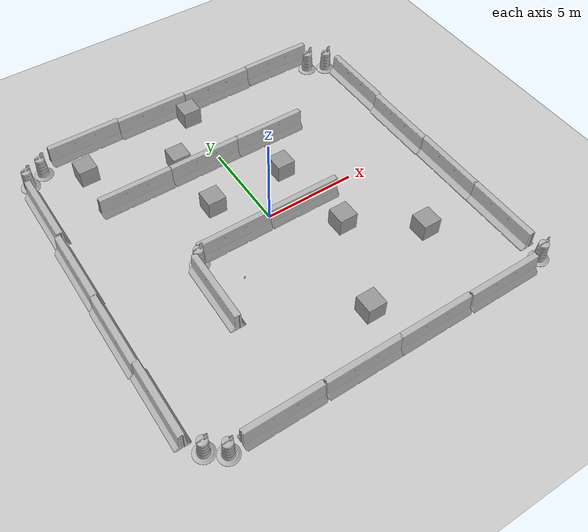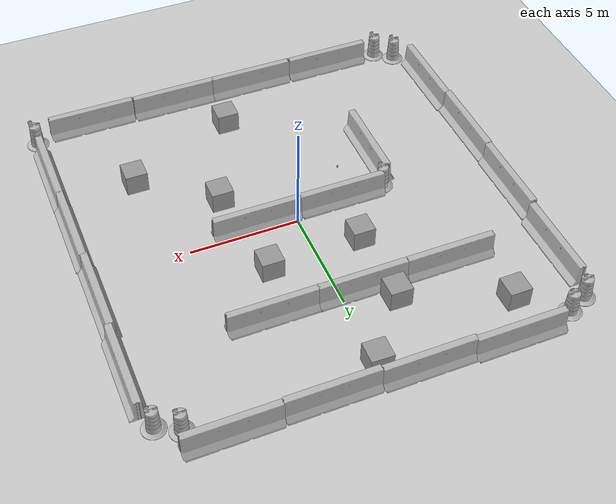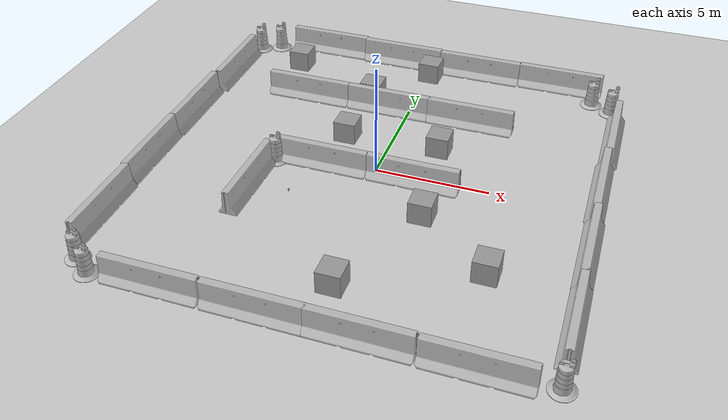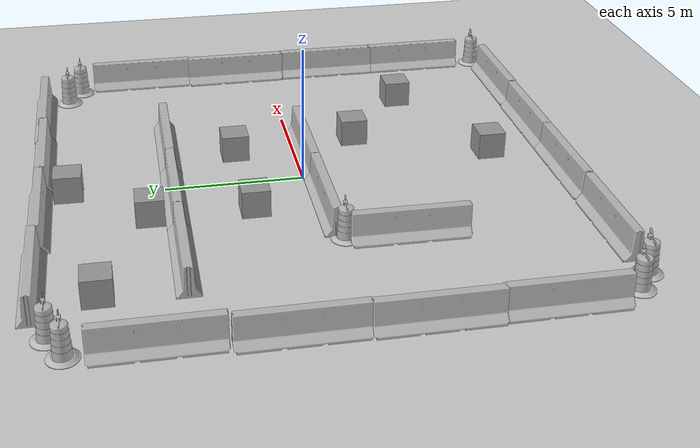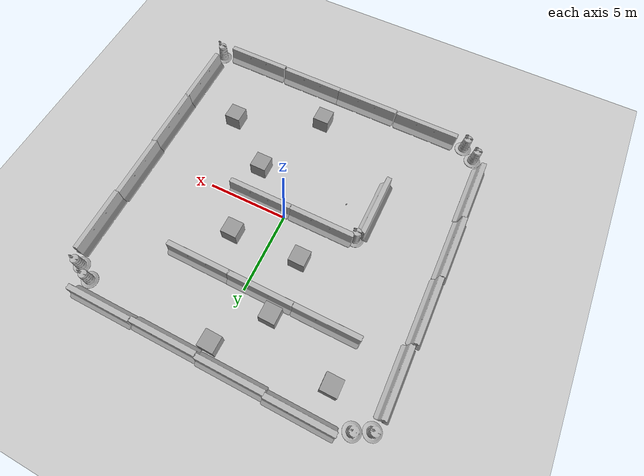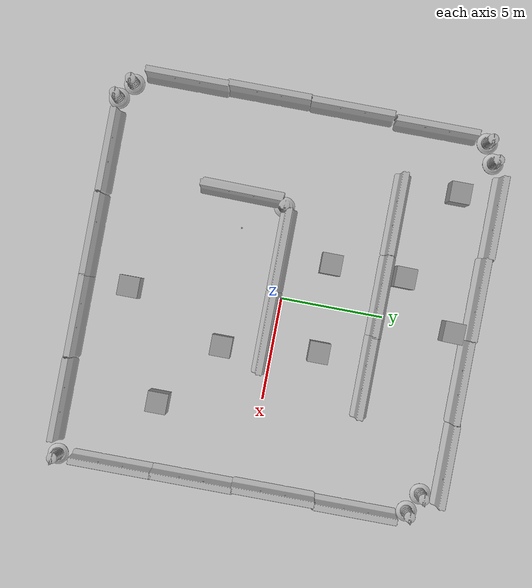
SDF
<sdf version="1.6">
 <world name="default">
  <light name="sun" type="directional">
   <pose>0 0 10 0 -0 0</pose>
   <diffuse>0.8 0.8 0.8 1</diffuse>
   <specular>0.2 0.2 0.2 1</specular>
   <attenuation>
    <range>1000</range>
    <constant>0.9</constant>
    <linear>0.01</linear>
    <quadratic>0.001</quadratic>
   </attenuation>
   <direction>-0.5 0.1 -0.9</direction>
  </light>
  <model name="ground_plane">
   <static>1</static>
   <link name="link">
    <collision name="collision">
     <geometry><plane><normal>0 0 1</normal><size>100 100</size></plane></geometry>
     <surface><friction><ode><mu>100</mu><mu2>50</mu2></ode></friction></surface>
    </collision>
    <visual name="visual">
     <cast_shadows>0</cast_shadows>
     <geometry><plane><normal>0 0 1</normal><size>100 100</size></plane></geometry>
     <material>
      <script><uri>file://media/materials/scripts/gazebo.material</uri><name>Gazebo/Grey</name></script>
     </material>
    </visual>
   </link>
  </model>
  <gravity>0 0 -9.8</gravity>
  <magnetic_field>6e-06 2.3e-05 -4.2e-05</magnetic_field>
  <atmosphere type="adiabatic"/>
  <physics name="default_physics" default="0" type="ode">
   <max_step_size>0.001</max_step_size>
   <real_time_factor>1</real_time_factor>
   <real_time_update_rate>1000</real_time_update_rate>
  </physics>
  <scene><ambient>0.4 0.4 0.4 1</ambient><background>0.7 0.7 0.7 1</background><shadows>1</shadows></scene>
  <spherical_coordinates>
   <surface_model>EARTH_WGS84</surface_model>
   <latitude_deg>0</latitude_deg>
   <longitude_deg>0</longitude_deg>
   <elevation>0</elevation>
   <heading_deg>0</heading_deg>
  </spherical_coordinates>
  <model name="jersey_barrier">
   <static>1</static>
   <link name="link">
    <visual name="visual">
     <geometry>
      <mesh><uri>model://jersey_barrier/meshes/jersey_barrier.dae</uri><scale>1 1 1</scale></mesh>
     </geometry>
    </visual>
    <collision name="upright">
     <pose>0 0 0.5715 0 -0 0</pose>
     <geometry><box><size>4.06542 0.3063 1.143</size></box></geometry>
    </collision>
    <collision name="base">
     <pose>0 0 0.032258 0 -0 0</pose>
     <geometry><box><size>4.06542 0.8107 0.064516</size></box></geometry>
    </collision>
    <collision name="base2">
     <pose>0 0 0.1 0 -0 0</pose>
     <geometry><box><size>4.06542 0.65 0.1</size></box></geometry>
    </collision>
    <collision name="base3">
     <pose>0 0 0.2 0 -0 0</pose>
     <geometry><box><size>4.06542 0.5 0.1</size></box></geometry>
    </collision>
    <collision name="left-angle">
     <pose>0 -0.224 0.2401 0.9 -0 0</pose>
     <geometry><box><size>4.06542 0.5 0.064516</size></box></geometry>
    </collision>
    <collision name="right-angle">
     <pose>0 0.224 0.2401 -0.9 0 0</pose>
     <geometry><box><size>4.06542 0.5 0.064516</size></box></geometry>
    </collision>
   </link>
   <pose>-5.65677 9.4608 0 0 -0 0</pose>
  </model>
  <model name="jersey_barrier_clone">
   <static>1</static>
   <link name="link">
    <visual name="visual">
     <geometry>
      <mesh><uri>model://jersey_barrier/meshes/jersey_barrier.dae</uri><scale>1 1 1</scale></mesh>
     </geometry>
    </visual>
    <collision name="upright">
     <pose>0 0 0.5715 0 -0 0</pose>
     <geometry><box><size>4.06542 0.3063 1.143</size></box></geometry>
    </collision>
    <collision name="base">
     <pose>0 0 0.032258 0 -0 0</pose>
     <geometry><box><size>4.06542 0.8107 0.064516</size></box></geometry>
    </collision>
    <collision name="base2">
     <pose>0 0 0.1 0 -0 0</pose>
     <geometry><box><size>4.06542 0.65 0.1</size></box></geometry>
    </collision>
    <collision name="base3">
     <pose>0 0 0.2 0 -0 0</pose>
     <geometry><box><size>4.06542 0.5 0.1</size></box></geometry>
    </collision>
    <collision name="left-angle">
     <pose>0 -0.224 0.2401 0.9 -0 0</pose>
     <geometry><box><size>4.06542 0.5 0.064516</size></box></geometry>
    </collision>
    <collision name="right-angle">
     <pose>0 0.224 0.2401 -0.9 0 0</pose>
     <geometry><box><size>4.06542 0.5 0.064516</size></box></geometry>
    </collision>
   </link>
   <pose>-1.65987 9.36075 0 0 -0 0</pose>
  </model>
  <model name="jersey_barrier_clone_0">
   <static>1</static>
   <link name="link">
    <visual name="visual">
     <geometry>
      <mesh><uri>model://jersey_barrier/meshes/jersey_barrier.dae</uri><scale>1 1 1</scale></mesh>
     </geometry>
    </visual>
    <collision name="upright">
     <pose>0 0 0.5715 0 -0 0</pose>
     <geometry><box><size>4.06542 0.3063 1.143</size></box></geometry>
    </collision>
    <collision name="base">
     <pose>0 0 0.032258 0 -0 0</pose>
     <geometry><box><size>4.06542 0.8107 0.064516</size></box></geometry>
    </collision>
    <collision name="base2">
     <pose>0 0 0.1 0 -0 0</pose>
     <geometry><box><size>4.06542 0.65 0.1</size></box></geometry>
    </collision>
    <collision name="base3">
     <pose>0 0 0.2 0 -0 0</pose>
     <geometry><box><size>4.06542 0.5 0.1</size></box></geometry>
    </collision>
    <collision name="left-angle">
     <pose>0 -0.224 0.2401 0.9 -0 0</pose>
     <geometry><box><size>4.06542 0.5 0.064516</size></box></geometry>
    </collision>
    <collision name="right-angle">
     <pose>0 0.224 0.2401 -0.9 0 0</pose>
     <geometry><box><size>4.06542 0.5 0.064516</size></box></geometry>
    </collision>
   </link>
   <pose>2.39773 9.29085 0 0 -0 0</pose>
  </model>
  <model name="jersey_barrier_clone_1">
   <static>1</static>
   <link name="link">
    <visual name="visual">
     <geometry>
      <mesh><uri>model://jersey_barrier/meshes/jersey_barrier.dae</uri><scale>1 1 1</scale></mesh>
     </geometry>
    </visual>
    <collision name="upright">
     <pose>0 0 0.5715 0 -0 0</pose>
     <geometry><box><size>4.06542 0.3063 1.143</size></box></geometry>
    </collision>
    <collision name="base">
     <pose>0 0 0.032258 0 -0 0</pose>
     <geometry><box><size>4.06542 0.8107 0.064516</size></box></geometry>
    </collision>
    <collision name="base2">
     <pose>0 0 0.1 0 -0 0</pose>
     <geometry><box><size>4.06542 0.65 0.1</size></box></geometry>
    </collision>
    <collision name="base3">
     <pose>0 0 0.2 0 -0 0</pose>
     <geometry><box><size>4.06542 0.5 0.1</size></box></geometry>
    </collision>
    <collision name="left-angle">
     <pose>0 -0.224 0.2401 0.9 -0 0</pose>
     <geometry><box><size>4.06542 0.5 0.064516</size></box></geometry>
    </collision>
    <collision name="right-angle">
     <pose>0 0.224 0.2401 -0.9 0 0</pose>
     <geometry><box><size>4.06542 0.5 0.064516</size></box></geometry>
    </collision>
   </link>
   <pose>6.45464 9.33993 0 0 -0 0</pose>
  </model>
  <model name="jersey_barrier_clone_3">
   <static>1</static>
   <link name="link">
    <visual name="visual">
     <geometry>
      <mesh><uri>model://jersey_barrier/meshes/jersey_barrier.dae</uri><scale>1 1 1</scale></mesh>
     </geometry>
    </visual>
    <collision name="upright">
     <pose>0 0 0.5715 0 -0 0</pose>
     <geometry><box><size>4.06542 0.3063 1.143</size></box></geometry>
    </collision>
    <collision name="base">
     <pose>0 0 0.032258 0 -0 0</pose>
     <geometry><box><size>4.06542 0.8107 0.064516</size></box></geometry>
    </collision>
    <collision name="base2">
     <pose>0 0 0.1 0 -0 0</pose>
     <geometry><box><size>4.06542 0.65 0.1</size></box></geometry>
    </collision>
    <collision name="base3">
     <pose>0 0 0.2 0 -0 0</pose>
     <geometry><box><size>4.06542 0.5 0.1</size></box></geometry>
    </collision>
    <collision name="left-angle">
     <pose>0 -0.224 0.2401 0.9 -0 0</pose>
     <geometry><box><size>4.06542 0.5 0.064516</size></box></geometry>
    </collision>
    <collision name="right-angle">
     <pose>0 0.224 0.2401 -0.9 0 0</pose>
     <geometry><box><size>4.06542 0.5 0.064516</size></box></geometry>
    </collision>
   </link>
   <pose>9.44656 5.35522 0 0 0 -1.56865</pose>
  </model>
  <model name="jersey_barrier_clone_3_clone">
   <static>1</static>
   <link name="link">
    <visual name="visual">
     <geometry>
      <mesh><uri>model://jersey_barrier/meshes/jersey_barrier.dae</uri><scale>1 1 1</scale></mesh>
     </geometry>
    </visual>
    <collision name="upright">
     <pose>0 0 0.5715 0 -0 0</pose>
     <geometry><box><size>4.06542 0.3063 1.143</size></box></geometry>
    </collision>
    <collision name="base">
     <pose>0 0 0.032258 0 -0 0</pose>
     <geometry><box><size>4.06542 0.8107 0.064516</size></box></geometry>
    </collision>
    <collision name="base2">
     <pose>0 0 0.1 0 -0 0</pose>
     <geometry><box><size>4.06542 0.65 0.1</size></box></geometry>
    </collision>
    <collision name="base3">
     <pose>0 0 0.2 0 -0 0</pose>
     <geometry><box><size>4.06542 0.5 0.1</size></box></geometry>
    </collision>
    <collision name="left-angle">
     <pose>0 -0.224 0.2401 0.9 -0 0</pose>
     <geometry><box><size>4.06542 0.5 0.064516</size></box></geometry>
    </collision>
    <collision name="right-angle">
     <pose>0 0.224 0.2401 -0.9 0 0</pose>
     <geometry><box><size>4.06542 0.5 0.064516</size></box></geometry>
    </collision>
   </link>
   <pose>9.3727 1.33119 0 0 0 -1.56865</pose>
  </model>
  <model name="jersey_barrier_clone_3_clone_0">
   <static>1</static>
   <link name="link">
    <visual name="visual">
     <geometry>
      <mesh><uri>model://jersey_barrier/meshes/jersey_barrier.dae</uri><scale>1 1 1</scale></mesh>
     </geometry>
    </visual>
    <collision name="upright">
     <pose>0 0 0.5715 0 -0 0</pose>
     <geometry><box><size>4.06542 0.3063 1.143</size></box></geometry>
    </collision>
    <collision name="base">
     <pose>0 0 0.032258 0 -0 0</pose>
     <geometry><box><size>4.06542 0.8107 0.064516</size></box></geometry>
    </collision>
    <collision name="base2">
     <pose>0 0 0.1 0 -0 0</pose>
     <geometry><box><size>4.06542 0.65 0.1</size></box></geometry>
    </collision>
    <collision name="base3">
     <pose>0 0 0.2 0 -0 0</pose>
     <geometry><box><size>4.06542 0.5 0.1</size></box></geometry>
    </collision>
    <collision name="left-angle">
     <pose>0 -0.224 0.2401 0.9 -0 0</pose>
     <geometry><box><size>4.06542 0.5 0.064516</size></box></geometry>
    </collision>
    <collision name="right-angle">
     <pose>0 0.224 0.2401 -0.9 0 0</pose>
     <geometry><box><size>4.06542 0.5 0.064516</size></box></geometry>
    </collision>
   </link>
   <pose>9.4315 -2.6268 0 0 0 -1.56865</pose>
  </model>
  <model name="jersey_barrier_clone_3_clone_1">
   <static>1</static>
   <link name="link">
    <visual name="visual">
     <geometry>
      <mesh><uri>model://jersey_barrier/meshes/jersey_barrier.dae</uri><scale>1 1 1</scale></mesh>
     </geometry>
    </visual>
    <collision name="upright">
     <pose>0 0 0.5715 0 -0 0</pose>
     <geometry><box><size>4.06542 0.3063 1.143</size></box></geometry>
    </collision>
    <collision name="base">
     <pose>0 0 0.032258 0 -0 0</pose>
     <geometry><box><size>4.06542 0.8107 0.064516</size></box></geometry>
    </collision>
    <collision name="base2">
     <pose>0 0 0.1 0 -0 0</pose>
     <geometry><box><size>4.06542 0.65 0.1</size></box></geometry>
    </collision>
    <collision name="base3">
     <pose>0 0 0.2 0 -0 0</pose>
     <geometry><box><size>4.06542 0.5 0.1</size></box></geometry>
    </collision>
    <collision name="left-angle">
     <pose>0 -0.224 0.2401 0.9 -0 0</pose>
     <geometry><box><size>4.06542 0.5 0.064516</size></box></geometry>
    </collision>
    <collision name="right-angle">
     <pose>0 0.224 0.2401 -0.9 0 0</pose>
     <geometry><box><size>4.06542 0.5 0.064516</size></box></geometry>
    </collision>
   </link>
   <pose>9.44969 -6.53485 0 0 0 -1.56865</pose>
  </model>
  <model name="jersey_barrier_clone_2_clone">
   <static>1</static>
   <link name="link">
    <visual name="visual">
     <geometry>
      <mesh><uri>model://jersey_barrier/meshes/jersey_barrier.dae</uri><scale>1 1 1</scale></mesh>
     </geometry>
    </visual>
    <collision name="upright">
     <pose>0 0 0.5715 0 -0 0</pose>
     <geometry><box><size>4.06542 0.3063 1.143</size></box></geometry>
    </collision>
    <collision name="base">
     <pose>0 0 0.032258 0 -0 0</pose>
     <geometry><box><size>4.06542 0.8107 0.064516</size></box></geometry>
    </collision>
    <collision name="base2">
     <pose>0 0 0.1 0 -0 0</pose>
     <geometry><box><size>4.06542 0.65 0.1</size></box></geometry>
    </collision>
    <collision name="base3">
     <pose>0 0 0.2 0 -0 0</pose>
     <geometry><box><size>4.06542 0.5 0.1</size></box></geometry>
    </collision>
    <collision name="left-angle">
     <pose>0 -0.224 0.2401 0.9 -0 0</pose>
     <geometry><box><size>4.06542 0.5 0.064516</size></box></geometry>
    </collision>
    <collision name="right-angle">
     <pose>0 0.224 0.2401 -0.9 0 0</pose>
     <geometry><box><size>4.06542 0.5 0.064516</size></box></geometry>
    </collision>
   </link>
   <pose>6.70657 -9.54347 0 0 -0 0</pose>
  </model>
  <model name="jersey_barrier_clone_2_clone_0">
   <static>1</static>
   <link name="link">
    <visual name="visual">
     <geometry>
      <mesh><uri>model://jersey_barrier/meshes/jersey_barrier.dae</uri><scale>1 1 1</scale></mesh>
     </geometry>
    </visual>
    <collision name="upright">
     <pose>0 0 0.5715 0 -0 0</pose>
     <geometry><box><size>4.06542 0.3063 1.143</size></box></geometry>
    </collision>
    <collision name="base">
     <pose>0 0 0.032258 0 -0 0</pose>
     <geometry><box><size>4.06542 0.8107 0.064516</size></box></geometry>
    </collision>
    <collision name="base2">
     <pose>0 0 0.1 0 -0 0</pose>
     <geometry><box><size>4.06542 0.65 0.1</size></box></geometry>
    </collision>
    <collision name="base3">
     <pose>0 0 0.2 0 -0 0</pose>
     <geometry><box><size>4.06542 0.5 0.1</size></box></geometry>
    </collision>
    <collision name="left-angle">
     <pose>0 -0.224 0.2401 0.9 -0 0</pose>
     <geometry><box><size>4.06542 0.5 0.064516</size></box></geometry>
    </collision>
    <collision name="right-angle">
     <pose>0 0.224 0.2401 -0.9 0 0</pose>
     <geometry><box><size>4.06542 0.5 0.064516</size></box></geometry>
    </collision>
   </link>
   <pose>2.59616 -9.50928 0 0 -0 0</pose>
  </model>
  <model name="jersey_barrier_clone_2_clone_1">
   <static>1</static>
   <link name="link">
    <visual name="visual">
     <geometry>
      <mesh><uri>model://jersey_barrier/meshes/jersey_barrier.dae</uri><scale>1 1 1</scale></mesh>
     </geometry>
    </visual>
    <collision name="upright">
     <pose>0 0 0.5715 0 -0 0</pose>
     <geometry><box><size>4.06542 0.3063 1.143</size></box></geometry>
    </collision>
    <collision name="base">
     <pose>0 0 0.032258 0 -0 0</pose>
     <geometry><box><size>4.06542 0.8107 0.064516</size></box></geometry>
    </collision>
    <collision name="base2">
     <pose>0 0 0.1 0 -0 0</pose>
     <geometry><box><size>4.06542 0.65 0.1</size></box></geometry>
    </collision>
    <collision name="base3">
     <pose>0 0 0.2 0 -0 0</pose>
     <geometry><box><size>4.06542 0.5 0.1</size></box></geometry>
    </collision>
    <collision name="left-angle">
     <pose>0 -0.224 0.2401 0.9 -0 0</pose>
     <geometry><box><size>4.06542 0.5 0.064516</size></box></geometry>
    </collision>
    <collision name="right-angle">
     <pose>0 0.224 0.2401 -0.9 0 0</pose>
     <geometry><box><size>4.06542 0.5 0.064516</size></box></geometry>
    </collision>
   </link>
   <pose>-1.33414 -9.50852 0 0 -0 0</pose>
  </model>
  <model name="jersey_barrier_clone_2_clone_2">
   <static>1</static>
   <link name="link">
    <visual name="visual">
     <geometry>
      <mesh><uri>model://jersey_barrier/meshes/jersey_barrier.dae</uri><scale>1 1 1</scale></mesh>
     </geometry>
    </visual>
    <collision name="upright">
     <pose>0 0 0.5715 0 -0 0</pose>
     <geometry><box><size>4.06542 0.3063 1.143</size></box></geometry>
    </collision>
    <collision name="base">
     <pose>0 0 0.032258 0 -0 0</pose>
     <geometry><box><size>4.06542 0.8107 0.064516</size></box></geometry>
    </collision>
    <collision name="base2">
     <pose>0 0 0.1 0 -0 0</pose>
     <geometry><box><size>4.06542 0.65 0.1</size></box></geometry>
    </collision>
    <collision name="base3">
     <pose>0 0 0.2 0 -0 0</pose>
     <geometry><box><size>4.06542 0.5 0.1</size></box></geometry>
    </collision>
    <collision name="left-angle">
     <pose>0 -0.224 0.2401 0.9 -0 0</pose>
     <geometry><box><size>4.06542 0.5 0.064516</size></box></geometry>
    </collision>
    <collision name="right-angle">
     <pose>0 0.224 0.2401 -0.9 0 0</pose>
     <geometry><box><size>4.06542 0.5 0.064516</size></box></geometry>
    </collision>
   </link>
   <pose>-5.44605 -9.49634 0 0 -0 0</pose>
  </model>
  <model name="jersey_barrier_clone_3_clone_1_clone">
   <static>1</static>
   <link name="link">
    <visual name="visual">
     <geometry>
      <mesh><uri>model://jersey_barrier/meshes/jersey_barrier.dae</uri><scale>1 1 1</scale></mesh>
     </geometry>
    </visual>
    <collision name="upright">
     <pose>0 0 0.5715 0 -0 0</pose>
     <geometry><box><size>4.06542 0.3063 1.143</size></box></geometry>
    </collision>
    <collision name="base">
     <pose>0 0 0.032258 0 -0 0</pose>
     <geometry><box><size>4.06542 0.8107 0.064516</size></box></geometry>
    </collision>
    <collision name="base2">
     <pose>0 0 0.1 0 -0 0</pose>
     <geometry><box><size>4.06542 0.65 0.1</size></box></geometry>
    </collision>
    <collision name="base3">
     <pose>0 0 0.2 0 -0 0</pose>
     <geometry><box><size>4.06542 0.5 0.1</size></box></geometry>
    </collision>
    <collision name="left-angle">
     <pose>0 -0.224 0.2401 0.9 -0 0</pose>
     <geometry><box><size>4.06542 0.5 0.064516</size></box></geometry>
    </collision>
    <collision name="right-angle">
     <pose>0 0.224 0.2401 -0.9 0 0</pose>
     <geometry><box><size>4.06542 0.5 0.064516</size></box></geometry>
    </collision>
   </link>
   <pose>-9.54289 -6.33149 0 0 0 -1.56865</pose>
  </model>
  <model name="jersey_barrier_clone_3_clone_1_clone_0">
   <static>1</static>
   <link name="link">
    <visual name="visual">
     <geometry>
      <mesh><uri>model://jersey_barrier/meshes/jersey_barrier.dae</uri><scale>1 1 1</scale></mesh>
     </geometry>
    </visual>
    <collision name="upright">
     <pose>0 0 0.5715 0 -0 0</pose>
     <geometry><box><size>4.06542 0.3063 1.143</size></box></geometry>
    </collision>
    <collision name="base">
     <pose>0 0 0.032258 0 -0 0</pose>
     <geometry><box><size>4.06542 0.8107 0.064516</size></box></geometry>
    </collision>
    <collision name="base2">
     <pose>0 0 0.1 0 -0 0</pose>
     <geometry><box><size>4.06542 0.65 0.1</size></box></geometry>
    </collision>
    <collision name="base3">
     <pose>0 0 0.2 0 -0 0</pose>
     <geometry><box><size>4.06542 0.5 0.1</size></box></geometry>
    </collision>
    <collision name="left-angle">
     <pose>0 -0.224 0.2401 0.9 -0 0</pose>
     <geometry><box><size>4.06542 0.5 0.064516</size></box></geometry>
    </collision>
    <collision name="right-angle">
     <pose>0 0.224 0.2401 -0.9 0 0</pose>
     <geometry><box><size>4.06542 0.5 0.064516</size></box></geometry>
    </collision>
   </link>
   <pose>-9.6221 -2.35336 0 0 0 -1.56865</pose>
  </model>
  <model name="jersey_barrier_clone_3_clone_1_clone_1">
   <static>1</static>
   <link name="link">
    <visual name="visual">
     <geometry>
      <mesh><uri>model://jersey_barrier/meshes/jersey_barrier.dae</uri><scale>1 1 1</scale></mesh>
     </geometry>
    </visual>
    <collision name="upright">
     <pose>0 0 0.5715 0 -0 0</pose>
     <geometry><box><size>4.06542 0.3063 1.143</size></box></geometry>
    </collision>
    <collision name="base">
     <pose>0 0 0.032258 0 -0 0</pose>
     <geometry><box><size>4.06542 0.8107 0.064516</size></box></geometry>
    </collision>
    <collision name="base2">
     <pose>0 0 0.1 0 -0 0</pose>
     <geometry><box><size>4.06542 0.65 0.1</size></box></geometry>
    </collision>
    <collision name="base3">
     <pose>0 0 0.2 0 -0 0</pose>
     <geometry><box><size>4.06542 0.5 0.1</size></box></geometry>
    </collision>
    <collision name="left-angle">
     <pose>0 -0.224 0.2401 0.9 -0 0</pose>
     <geometry><box><size>4.06542 0.5 0.064516</size></box></geometry>
    </collision>
    <collision name="right-angle">
     <pose>0 0.224 0.2401 -0.9 0 0</pose>
     <geometry><box><size>4.06542 0.5 0.064516</size></box></geometry>
    </collision>
   </link>
   <pose>-9.58952 1.69745 0 0 0 -1.56865</pose>
  </model>
  <model name="jersey_barrier_clone_3_clone_1_clone_2">
   <static>1</static>
   <link name="link">
    <visual name="visual">
     <geometry>
      <mesh><uri>model://jersey_barrier/meshes/jersey_barrier.dae</uri><scale>1 1 1</scale></mesh>
     </geometry>
    </visual>
    <collision name="upright">
     <pose>0 0 0.5715 0 -0 0</pose>
     <geometry><box><size>4.06542 0.3063 1.143</size></box></geometry>
    </collision>
    <collision name="base">
     <pose>0 0 0.032258 0 -0 0</pose>
     <geometry><box><size>4.06542 0.8107 0.064516</size></box></geometry>
    </collision>
    <collision name="base2">
     <pose>0 0 0.1 0 -0 0</pose>
     <geometry><box><size>4.06542 0.65 0.1</size></box></geometry>
    </collision>
    <collision name="base3">
     <pose>0 0 0.2 0 -0 0</pose>
     <geometry><box><size>4.06542 0.5 0.1</size></box></geometry>
    </collision>
    <collision name="left-angle">
     <pose>0 -0.224 0.2401 0.9 -0 0</pose>
     <geometry><box><size>4.06542 0.5 0.064516</size></box></geometry>
    </collision>
    <collision name="right-angle">
     <pose>0 0.224 0.2401 -0.9 0 0</pose>
     <geometry><box><size>4.06542 0.5 0.064516</size></box></geometry>
    </collision>
   </link>
   <pose>-9.44715 5.83721 0 0 0 -1.56865</pose>
  </model>
  <model name="Construction Barrel">
   <link name="link">
    <inertial>
     <pose>0 0 0.4 0 -0 0</pose>
     <mass>500</mass>
     <inertia><ixx>51.2096</ixx><iyy>51.2096</iyy><izz>25</izz><ixy>0</ixy><ixz>0</ixz><iyz>0</iyz></inertia>
    </inertial>
    <collision name="collision">
     <geometry>
      <mesh><uri>model://construction_barrel/meshes/construction_barrel.dae</uri><scale>1 1 1</scale></mesh>
     </geometry>
    </collision>
    <visual name="visual">
     <geometry>
      <mesh><uri>model://construction_barrel/meshes/construction_barrel.dae</uri><scale>1 1 1</scale></mesh>
     </geometry>
    </visual>
   </link>
   <pose>9.07444 7.91058 -2e-06 1e-06 8e-06 -5.3e-05</pose>
  </model>
  <model name="Construction Barrel_0">
   <link name="link">
    <inertial>
     <pose>0 0 0.4 0 -0 0</pose>
     <mass>500</mass>
     <inertia><ixx>51.2096</ixx><iyy>51.2096</iyy><izz>25</izz><ixy>0</ixy><ixz>0</ixz><iyz>0</iyz></inertia>
    </inertial>
    <collision name="collision">
     <geometry>
      <mesh><uri>model://construction_barrel/meshes/construction_barrel.dae</uri><scale>1 1 1</scale></mesh>
     </geometry>
    </collision>
    <visual name="visual">
     <geometry>
      <mesh><uri>model://construction_barrel/meshes/construction_barrel.dae</uri><scale>1 1 1</scale></mesh>
     </geometry>
    </visual>
   </link>
   <pose>8.12828 8.41638 -2e-06 1e-06 8e-06 -4.8e-05</pose>
  </model>
  <model name="Construction Barrel_1">
   <link name="link">
    <inertial>
     <pose>0 0 0.4 0 -0 0</pose>
     <mass>500</mass>
     <inertia><ixx>51.2096</ixx><iyy>51.2096</iyy><izz>25</izz><ixy>0</ixy><ixz>0</ixz><iyz>0</iyz></inertia>
    </inertial>
    <collision name="collision">
     <geometry>
      <mesh><uri>model://construction_barrel/meshes/construction_barrel.dae</uri><scale>1 1 1</scale></mesh>
     </geometry>
    </collision>
    <visual name="visual">
     <geometry>
      <mesh><uri>model://construction_barrel/meshes/construction_barrel.dae</uri><scale>1 1 1</scale></mesh>
     </geometry>
    </visual>
   </link>
   <pose>-9.27263 8.48393 -2e-06 1e-06 8e-06 -4.7e-05</pose>
  </model>
  <model name="Construction Barrel_2">
   <link name="link">
    <inertial>
     <pose>0 0 0.4 0 -0 0</pose>
     <mass>500</mass>
     <inertia><ixx>51.2096</ixx><iyy>51.2096</iyy><izz>25</izz><ixy>0</ixy><ixz>0</ixz><iyz>0</iyz></inertia>
    </inertial>
    <collision name="collision">
     <geometry>
      <mesh><uri>model://construction_barrel/meshes/construction_barrel.dae</uri><scale>1 1 1</scale></mesh>
     </geometry>
    </collision>
    <visual name="visual">
     <geometry>
      <mesh><uri>model://construction_barrel/meshes/construction_barrel.dae</uri><scale>1 1 1</scale></mesh>
     </geometry>
    </visual>
   </link>
   <pose>-8.34361 8.93855 1e-06 3e-06 2e-06 -4e-05</pose>
  </model>
  <model name="Construction Barrel_3">
   <link name="link">
    <inertial>
     <pose>0 0 0.4 0 -0 0</pose>
     <mass>500</mass>
     <inertia><ixx>51.2096</ixx><iyy>51.2096</iyy><izz>25</izz><ixy>0</ixy><ixz>0</ixz><iyz>0</iyz></inertia>
    </inertial>
    <collision name="collision">
     <geometry>
      <mesh><uri>model://construction_barrel/meshes/construction_barrel.dae</uri><scale>1 1 1</scale></mesh>
     </geometry>
    </collision>
    <visual name="visual">
     <geometry>
      <mesh><uri>model://construction_barrel/meshes/construction_barrel.dae</uri><scale>1 1 1</scale></mesh>
     </geometry>
    </visual>
   </link>
   <pose>9.45362 -9.2943 0 0 0 -4.7e-05</pose>
  </model>
  <model name="Construction Barrel_4">
   <link name="link">
    <inertial>
     <pose>0 0 0.4 0 -0 0</pose>
     <mass>500</mass>
     <inertia><ixx>51.2096</ixx><iyy>51.2096</iyy><izz>25</izz><ixy>0</ixy><ixz>0</ixz><iyz>0</iyz></inertia>
    </inertial>
    <collision name="collision">
     <geometry>
      <mesh><uri>model://construction_barrel/meshes/construction_barrel.dae</uri><scale>1 1 1</scale></mesh>
     </geometry>
    </collision>
    <visual name="visual">
     <geometry>
      <mesh><uri>model://construction_barrel/meshes/construction_barrel.dae</uri><scale>1 1 1</scale></mesh>
     </geometry>
    </visual>
   </link>
   <pose>-8.13316 -9.57173 0 0 0 -0.000464</pose>
  </model>
  <model name="Construction Barrel_5">
   <link name="link">
    <inertial>
     <pose>0 0 0.4 0 -0 0</pose>
     <mass>500</mass>
     <inertia><ixx>51.2096</ixx><iyy>51.2096</iyy><izz>25</izz><ixy>0</ixy><ixz>0</ixz><iyz>0</iyz></inertia>
    </inertial>
    <collision name="collision">
     <geometry>
      <mesh><uri>model://construction_barrel/meshes/construction_barrel.dae</uri><scale>1 1 1</scale></mesh>
     </geometry>
    </collision>
    <visual name="visual">
     <geometry>
      <mesh><uri>model://construction_barrel/meshes/construction_barrel.dae</uri><scale>1 1 1</scale></mesh>
     </geometry>
    </visual>
   </link>
   <pose>-8.93848 -8.96006 0 0 0 -0.000363</pose>
  </model>
  <model name="jersey_barrier_0">
   <static>1</static>
   <link name="link">
    <visual name="visual">
     <geometry>
      <mesh><uri>model://jersey_barrier/meshes/jersey_barrier.dae</uri><scale>1 1 1</scale></mesh>
     </geometry>
    </visual>
    <collision name="upright">
     <pose>0 0 0.5715 0 -0 0</pose>
     <geometry><box><size>4.06542 0.3063 1.143</size></box></geometry>
    </collision>
    <collision name="base">
     <pose>0 0 0.032258 0 -0 0</pose>
     <geometry><box><size>4.06542 0.8107 0.064516</size></box></geometry>
    </collision>
    <collision name="base2">
     <pose>0 0 0.1 0 -0 0</pose>
     <geometry><box><size>4.06542 0.65 0.1</size></box></geometry>
    </collision>
    <collision name="base3">
     <pose>0 0 0.2 0 -0 0</pose>
     <geometry><box><size>4.06542 0.5 0.1</size></box></geometry>
    </collision>
    <collision name="left-angle">
     <pose>0 -0.224 0.2401 0.9 -0 0</pose>
     <geometry><box><size>4.06542 0.5 0.064516</size></box></geometry>
    </collision>
    <collision name="right-angle">
     <pose>0 0.224 0.2401 -0.9 0 0</pose>
     <geometry><box><size>4.06542 0.5 0.064516</size></box></geometry>
    </collision>
   </link>
   <pose>-4.97429 4.73074 0 0 -0 0</pose>
  </model>
  <model name="jersey_barrier_0_clone">
   <static>1</static>
   <link name="link">
    <visual name="visual">
     <geometry>
      <mesh><uri>model://jersey_barrier/meshes/jersey_barrier.dae</uri><scale>1 1 1</scale></mesh>
     </geometry>
    </visual>
    <collision name="upright">
     <pose>0 0 0.5715 0 -0 0</pose>
     <geometry><box><size>4.06542 0.3063 1.143</size></box></geometry>
    </collision>
    <collision name="base">
     <pose>0 0 0.032258 0 -0 0</pose>
     <geometry><box><size>4.06542 0.8107 0.064516</size></box></geometry>
    </collision>
    <collision name="base2">
     <pose>0 0 0.1 0 -0 0</pose>
     <geometry><box><size>4.06542 0.65 0.1</size></box></geometry>
    </collision>
    <collision name="base3">
     <pose>0 0 0.2 0 -0 0</pose>
     <geometry><box><size>4.06542 0.5 0.1</size></box></geometry>
    </collision>
    <collision name="left-angle">
     <pose>0 -0.224 0.2401 0.9 -0 0</pose>
     <geometry><box><size>4.06542 0.5 0.064516</size></box></geometry>
    </collision>
    <collision name="right-angle">
     <pose>0 0.224 0.2401 -0.9 0 0</pose>
     <geometry><box><size>4.06542 0.5 0.064516</size></box></geometry>
    </collision>
   </link>
   <pose>-0.93635 4.73131 0 0 -0 0</pose>
  </model>
  <model name="jersey_barrier_0_clone_0">
   <static>1</static>
   <link name="link">
    <visual name="visual">
     <geometry>
      <mesh><uri>model://jersey_barrier/meshes/jersey_barrier.dae</uri><scale>1 1 1</scale></mesh>
     </geometry>
    </visual>
    <collision name="upright">
     <pose>0 0 0.5715 0 -0 0</pose>
     <geometry><box><size>4.06542 0.3063 1.143</size></box></geometry>
    </collision>
    <collision name="base">
     <pose>0 0 0.032258 0 -0 0</pose>
     <geometry><box><size>4.06542 0.8107 0.064516</size></box></geometry>
    </collision>
    <collision name="base2">
     <pose>0 0 0.1 0 -0 0</pose>
     <geometry><box><size>4.06542 0.65 0.1</size></box></geometry>
    </collision>
    <collision name="base3">
     <pose>0 0 0.2 0 -0 0</pose>
     <geometry><box><size>4.06542 0.5 0.1</size></box></geometry>
    </collision>
    <collision name="left-angle">
     <pose>0 -0.224 0.2401 0.9 -0 0</pose>
     <geometry><box><size>4.06542 0.5 0.064516</size></box></geometry>
    </collision>
    <collision name="right-angle">
     <pose>0 0.224 0.2401 -0.9 0 0</pose>
     <geometry><box><size>4.06542 0.5 0.064516</size></box></geometry>
    </collision>
   </link>
   <pose>2.99134 4.7208 0 0 -0 0</pose>
  </model>
  <model name="jersey_barrier_0_clone_1">
   <static>1</static>
   <link name="link">
    <visual name="visual">
     <geometry>
      <mesh><uri>model://jersey_barrier/meshes/jersey_barrier.dae</uri><scale>1 1 1</scale></mesh>
     </geometry>
    </visual>
    <collision name="upright">
     <pose>0 0 0.5715 0 -0 0</pose>
     <geometry><box><size>4.06542 0.3063 1.143</size></box></geometry>
    </collision>
    <collision name="base">
     <pose>0 0 0.032258 0 -0 0</pose>
     <geometry><box><size>4.06542 0.8107 0.064516</size></box></geometry>
    </collision>
    <collision name="base2">
     <pose>0 0 0.1 0 -0 0</pose>
     <geometry><box><size>4.06542 0.65 0.1</size></box></geometry>
    </collision>
    <collision name="base3">
     <pose>0 0 0.2 0 -0 0</pose>
     <geometry><box><size>4.06542 0.5 0.1</size></box></geometry>
    </collision>
    <collision name="left-angle">
     <pose>0 -0.224 0.2401 0.9 -0 0</pose>
     <geometry><box><size>4.06542 0.5 0.064516</size></box></geometry>
    </collision>
    <collision name="right-angle">
     <pose>0 0.224 0.2401 -0.9 0 0</pose>
     <geometry><box><size>4.06542 0.5 0.064516</size></box></geometry>
    </collision>
   </link>
   <pose>-2.28125 -0.396276 0 0 -0 0</pose>
  </model>
  <model name="jersey_barrier_0_clone_1_clone">
   <static>1</static>
   <link name="link">
    <visual name="visual">
     <geometry>
      <mesh><uri>model://jersey_barrier/meshes/jersey_barrier.dae</uri><scale>1 1 1</scale></mesh>
     </geometry>
    </visual>
    <collision name="upright">
     <pose>0 0 0.5715 0 -0 0</pose>
     <geometry><box><size>4.06542 0.3063 1.143</size></box></geometry>
    </collision>
    <collision name="base">
     <pose>0 0 0.032258 0 -0 0</pose>
     <geometry><box><size>4.06542 0.8107 0.064516</size></box></geometry>
    </collision>
    <collision name="base2">
     <pose>0 0 0.1 0 -0 0</pose>
     <geometry><box><size>4.06542 0.65 0.1</size></box></geometry>
    </collision>
    <collision name="base3">
     <pose>0 0 0.2 0 -0 0</pose>
     <geometry><box><size>4.06542 0.5 0.1</size></box></geometry>
    </collision>
    <collision name="left-angle">
     <pose>0 -0.224 0.2401 0.9 -0 0</pose>
     <geometry><box><size>4.06542 0.5 0.064516</size></box></geometry>
    </collision>
    <collision name="right-angle">
     <pose>0 0.224 0.2401 -0.9 0 0</pose>
     <geometry><box><size>4.06542 0.5 0.064516</size></box></geometry>
    </collision>
   </link>
   <pose>1.76519 -0.393386 0 0 -0 0</pose>
  </model>
  <model name="jersey_barrier_0_clone_1_clone_clone">
   <static>1</static>
   <link name="link">
    <visual name="visual">
     <geometry>
      <mesh><uri>model://jersey_barrier/meshes/jersey_barrier.dae</uri><scale>1 1 1</scale></mesh>
     </geometry>
    </visual>
    <collision name="upright">
     <pose>0 0 0.5715 0 -0 0</pose>
     <geometry><box><size>4.06542 0.3063 1.143</size></box></geometry>
    </collision>
    <collision name="base">
     <pose>0 0 0.032258 0 -0 0</pose>
     <geometry><box><size>4.06542 0.8107 0.064516</size></box></geometry>
    </collision>
    <collision name="base2">
     <pose>0 0 0.1 0 -0 0</pose>
     <geometry><box><size>4.06542 0.65 0.1</size></box></geometry>
    </collision>
    <collision name="base3">
     <pose>0 0 0.2 0 -0 0</pose>
     <geometry><box><size>4.06542 0.5 0.1</size></box></geometry>
    </collision>
    <collision name="left-angle">
     <pose>0 -0.224 0.2401 0.9 -0 0</pose>
     <geometry><box><size>4.06542 0.5 0.064516</size></box></geometry>
    </collision>
    <collision name="right-angle">
     <pose>0 0.224 0.2401 -0.9 0 0</pose>
     <geometry><box><size>4.06542 0.5 0.064516</size></box></geometry>
    </collision>
   </link>
   <pose>-4.70694 -2.78766 0 0 0 -1.58136</pose>
  </model>
  <model name="coke_can">
   <link name="link">
    <inertial>
     <pose>-0.01 -0.012 0.15 0 -0 0</pose>
     <mass>0.39</mass>
     <inertia><ixx>0.00058</ixx><ixy>0</ixy><ixz>0</ixz><iyy>0.00058</iyy><iyz>0</iyz><izz>0.00019</izz></inertia>
    </inertial>
    <collision name="collision">
     <pose>0 0 -0.46 0 -0 0</pose>
     <geometry><mesh><uri>model://coke_can/meshes/coke_can.dae</uri><scale>1 1 1</scale></mesh></geometry>
     <surface>
      <friction><ode><mu>1</mu><mu2>1</mu2></ode></friction>
      <contact><ode><kp>1e+07</kp><kd>1</kd><min_depth>0.001</min_depth><max_vel>0.1</max_vel></ode></contact>
     </surface>
    </collision>
    <visual name="visual">
     <pose>0 0 -0.46 0 -0 0</pose>
     <geometry><mesh><uri>model://coke_can/meshes/coke_can.dae</uri><scale>1 1 1</scale></mesh></geometry>
    </visual>
   </link>
   <pose>-3.01066 -2.51939 0.276562 -0.000895 -0.010662 -0.06593</pose>
  </model>
  <model name="Construction Barrel_6">
   <link name="link">
    <inertial>
     <pose>0 0 0.4 0 -0 0</pose>
     <mass>500</mass>
     <inertia><ixx>51.2096</ixx><iyy>51.2096</iyy><izz>25</izz><ixy>0</ixy><ixz>0</ixz><iyz>0</iyz></inertia>
    </inertial>
    <collision name="collision">
     <geometry>
      <mesh><uri>model://construction_barrel/meshes/construction_barrel.dae</uri><scale>1 1 1</scale></mesh>
     </geometry>
    </collision>
    <visual name="visual">
     <geometry>
      <mesh><uri>model://construction_barrel/meshes/construction_barrel.dae</uri><scale>1 1 1</scale></mesh>
     </geometry>
    </visual>
   </link>
   <pose>-4.39729 -0.66485 -0.000727 -0.003788 -0.001885 0.000623</pose>
  </model>
  <model name="unit_box_0">
   <pose>5.98026 -4.91186 0.499995 -1e-05 0 0</pose>
   <link name="link">
    <inertial>
     <mass>1</mass>
     <inertia>
      <ixx>0.166667</ixx>
      <ixy>0</ixy>
      <ixz>0</ixz>
      <iyy>0.166667</iyy>
      <iyz>0</iyz>
      <izz>0.166667</izz>
     </inertia>
    </inertial>
    <collision name="collision"><geometry><box><size>1 1 1</size></box></geometry></collision>
    <visual name="visual">
     <geometry><box><size>1 1 1</size></box></geometry>
     <material>
      <script><name>Gazebo/Grey</name><uri>file://media/materials/scripts/gazebo.material</uri></script>
     </material>
    </visual>
   </link>
  </model>
  <model name="unit_box_1">
   <pose>0.781595 -7.2589 0.499995 0 1e-05 0</pose>
   <link name="link">
    <inertial>
     <mass>1</mass>
     <inertia>
      <ixx>0.166667</ixx>
      <ixy>0</ixy>
      <ixz>0</ixz>
      <iyy>0.166667</iyy>
      <iyz>0</iyz>
      <izz>0.166667</izz>
     </inertia>
    </inertial>
    <collision name="collision"><geometry><box><size>1 1 1</size></box></geometry></collision>
    <visual name="visual">
     <geometry><box><size>1 1 1</size></box></geometry>
     <material>
      <script><name>Gazebo/Grey</name><uri>file://media/materials/scripts/gazebo.material</uri></script>
     </material>
    </visual>
   </link>
  </model>
  <model name="unit_box_2">
   <pose>-2.04446 2.05188 0.499995 -1e-05 0 0</pose>
   <link name="link">
    <inertial>
     <mass>1</mass>
     <inertia>
      <ixx>0.166667</ixx>
      <ixy>0</ixy>
      <ixz>0</ixz>
      <iyy>0.166667</iyy>
      <iyz>0</iyz>
      <izz>0.166667</izz>
     </inertia>
    </inertial>
    <collision name="collision"><geometry><box><size>1 1 1</size></box></geometry></collision>
    <visual name="visual">
     <geometry><box><size>1 1 1</size></box></geometry>
     <material>
      <script><name>Gazebo/Grey</name><uri>file://media/materials/scripts/gazebo.material</uri></script>
     </material>
    </visual>
   </link>
  </model>
  <model name="unit_box_3">
   <pose>2.21131 2.24408 0.499995 0 1e-05 0</pose>
   <link name="link">
    <inertial>
     <mass>1</mass>
     <inertia>
      <ixx>0.166667</ixx>
      <ixy>0</ixy>
      <ixz>0</ixz>
      <iyy>0.166667</iyy>
      <iyz>0</iyz>
      <izz>0.166667</izz>
     </inertia>
    </inertial>
    <collision name="collision"><geometry><box><size>1 1 1</size></box></geometry></collision>
    <visual name="visual">
     <geometry><box><size>1 1 1</size></box></geometry>
     <material>
      <script><name>Gazebo/Grey</name><uri>file://media/materials/scripts/gazebo.material</uri></script>
     </material>
    </visual>
   </link>
  </model>
  <model name="unit_box_4">
   <pose>-2.05575 5.64788 0.499995 1e-05 -0 -0.010836</pose>
   <link name="link">
    <inertial>
     <mass>1</mass>
     <inertia>
      <ixx>0.166667</ixx>
      <ixy>0</ixy>
      <ixz>0</ixz>
      <iyy>0.166667</iyy>
      <iyz>0</iyz>
      <izz>0.166667</izz>
     </inertia>
    </inertial>
    <collision name="collision"><geometry><box><size>1 1 1</size></box></geometry></collision>
    <visual name="visual">
     <geometry><box><size>1 1 1</size></box></geometry>
     <material>
      <script><name>Gazebo/Grey</name><uri>file://media/materials/scripts/gazebo.material</uri></script>
     </material>
    </visual>
   </link>
  </model>
  <model name="unit_box_5">
   <pose>0.102262 8.38901 0.499995 -0 1e-05 -0.021583</pose>
   <link name="link">
    <inertial>
     <mass>1</mass>
     <inertia>
      <ixx>0.166667</ixx>
      <ixy>0</ixy>
      <ixz>0</ixz>
      <iyy>0.166667</iyy>
      <iyz>0</iyz>
      <izz>0.166667</izz>
     </inertia>
    </inertial>
    <collision name="collision"><geometry><box><size>1 1 1</size></box></geometry></collision>
    <visual name="visual">
     <geometry><box><size>1 1 1</size></box></geometry>
     <material>
      <script><name>Gazebo/Grey</name><uri>file://media/materials/scripts/gazebo.material</uri></script>
     </material>
    </visual>
   </link>
  </model>
  <model name="unit_box_6">
   <pose>-6.51545 7.47767 0.499995 -1e-05 0 0</pose>
   <link name="link">
    <inertial>
     <mass>1</mass>
     <inertia>
      <ixx>0.166667</ixx>
      <ixy>0</ixy>
      <ixz>0</ixz>
      <iyy>0.166667</iyy>
      <iyz>0</iyz>
      <izz>0.166667</izz>
     </inertia>
    </inertial>
    <collision name="collision"><geometry><box><size>1 1 1</size></box></geometry></collision>
    <visual name="visual">
     <geometry><box><size>1 1 1</size></box></geometry>
     <material>
      <script><name>Gazebo/Grey</name><uri>file://media/materials/scripts/gazebo.material</uri></script>
     </material>
    </visual>
   </link>
  </model>
  <model name="unit_box_7">
   <pose>2.77683 -2.40365 0.5 0 -0 0</pose>
   <link name="link">
    <inertial>
     <mass>1</mass>
     <inertia>
      <ixx>0.166667</ixx>
      <ixy>0</ixy>
      <ixz>0</ixz>
      <iyy>0.166667</iyy>
      <iyz>0</iyz>
      <izz>0.166667</izz>
     </inertia>
    </inertial>
    <collision name="collision"><geometry><box><size>1 1 1</size></box></geometry></collision>
    <visual name="visual">
     <geometry><box><size>1 1 1</size></box></geometry>
     <material>
      <script><name>Gazebo/Grey</name><uri>file://media/materials/scripts/gazebo.material</uri></script>
     </material>
    </visual>
   </link>
  </model>
 </world>
</sdf>
